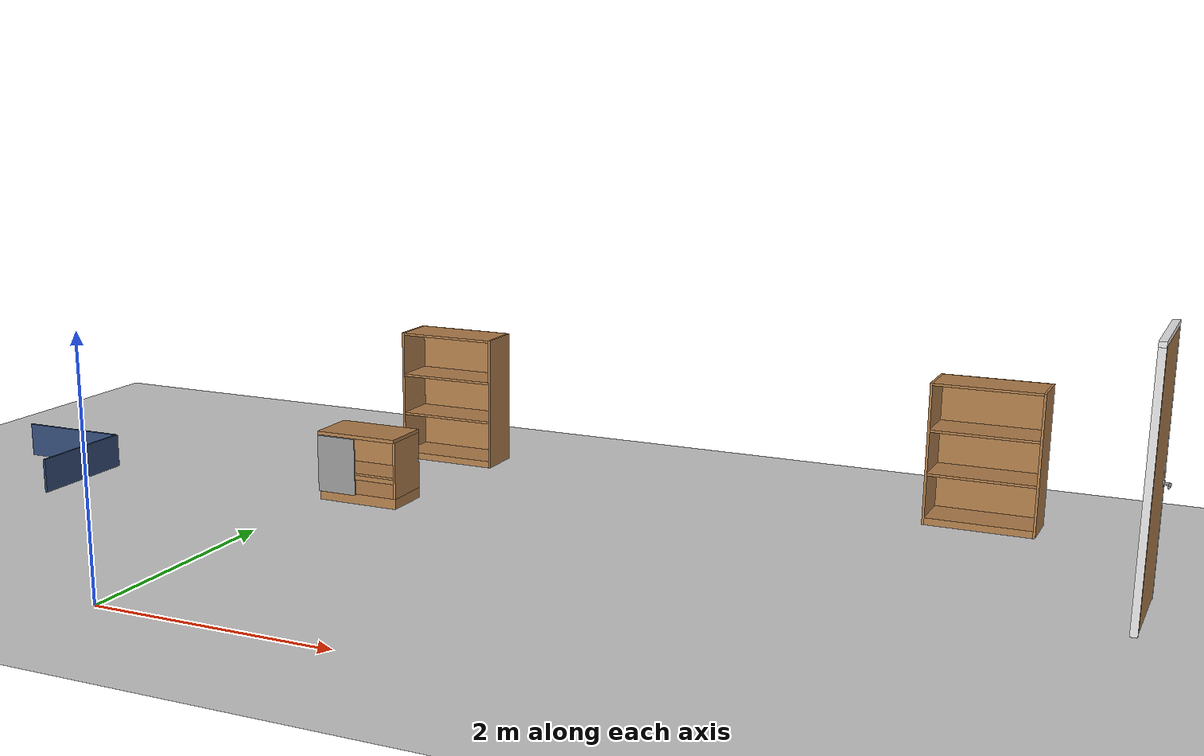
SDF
<sdf version="1.6">
 <world name="default">
  <model name="ground_plane">
   <static>1</static>
   <link name="link">
    <collision name="collision">
     <geometry><plane><normal>0 0 1</normal><size>100 100</size></plane></geometry>
     <surface><friction><ode><mu>100</mu><mu2>50</mu2></ode></friction></surface>
    </collision>
    <visual name="visual">
     <cast_shadows>0</cast_shadows>
     <geometry><plane><normal>0 0 1</normal><size>100 100</size></plane></geometry>
     <material>
      <script><uri>file://media/materials/scripts/gazebo.material</uri><name>Gazebo/Grey</name></script>
     </material>
    </visual>
   </link>
  </model>
  <model name="door_55_900_2090">
   <link name="link">
    <pose>0 0.45 0 0 -0 0</pose>
    <inertial>
     <mass>50</mass>
     <inertia><ixx>1</ixx><ixy>0</ixy><ixz>0</ixz><iyy>1</iyy><iyz>0</iyz><izz>1</izz></inertia>
    </inertial>
    <visual name="door">
     <pose>0 0 1.05 0 -0 0</pose>
     <geometry><box><size>0.055 0.83 2</size></box></geometry>
     <material>
      <script><uri>model://base_materials/wood/scripts/wood.material</uri><name>base_materials/wood</name></script>
     </material>
    </visual>
    <collision name="collision_door">
     <pose>0 0 1.05 0 -0 0</pose>
     <geometry><box><size>0.055 0.83 2</size></box></geometry>
    </collision>
    <visual name="right_frame">
     <pose>0 0.4325 1.025 0 -0 0</pose>
     <geometry><box><size>0.055 0.035 2.05</size></box></geometry>
     <material>
      <script><uri>model://base_materials/color/scripts</uri><name>hsr_color/white</name></script>
     </material>
    </visual>
    <collision name="collision_right_frame">
     <pose>0 0.4325 1.025 0 -0 0</pose>
     <geometry><box><size>0.055 0.035 2.05</size></box></geometry>
    </collision>
    <visual name="left_frame">
     <pose>0 -0.4325 1.025 0 -0 0</pose>
     <geometry><box><size>0.055 0.035 2.05</size></box></geometry>
     <material>
      <script><uri>model://base_materials/color/scripts</uri><name>hsr_color/white</name></script>
     </material>
    </visual>
    <collision name="collision_left_frame">
     <pose>0 -0.4325 1.025 0 -0 0</pose>
     <geometry><box><size>0.055 0.035 2.05</size></box></geometry>
    </collision>
    <visual name="top_frame">
     <pose>0 0 2.07 0 -0 0</pose>
     <geometry><box><size>0.055 0.9 0.04</size></box></geometry>
     <material>
      <script><uri>model://base_materials/color/scripts</uri><name>hsr_color/white</name></script>
     </material>
    </visual>
    <collision name="collision_top_frame">
     <pose>0 0 2.07 0 -0 0</pose>
     <geometry><box><size>0.055 0.9 0.04</size></box></geometry>
    </collision>
    <visual name="handle_front">
     <pose>0.0775 0.285 0.93 1.5708 -0 0</pose>
     <geometry><cylinder><radius>0.01</radius><length>0.1</length></cylinder></geometry>
     <material>
      <script><uri>model://base_materials/color/scripts</uri><name>hsr_color/grey</name></script>
     </material>
    </visual>
    <collision name="collision_handle_front">
     <pose>0.0775 0.285 0.93 1.5708 -0 0</pose>
     <geometry><cylinder><radius>0.01</radius><length>0.1</length></cylinder></geometry>
    </collision>
    <visual name="handle_back">
     <pose>-0.0775 0.285 0.93 1.5708 -0 0</pose>
     <geometry><cylinder><radius>0.01</radius><length>0.1</length></cylinder></geometry>
     <material>
      <script><uri>model://base_materials/color/scripts</uri><name>hsr_color/grey</name></script>
     </material>
    </visual>
    <collision name="collision_handle_back">
     <pose>-0.0775 0.285 0.93 1.5708 -0 0</pose>
     <geometry><cylinder><radius>0.01</radius><length>0.1</length></cylinder></geometry>
    </collision>
    <visual name="handle_center1">
     <pose>0 0.335 0.93 3.14159 1.57079 3.14159</pose>
     <geometry><cylinder><radius>0.01</radius><length>0.155</length></cylinder></geometry>
     <material>
      <script><uri>model://base_materials/color/scripts</uri><name>hsr_color/grey</name></script>
     </material>
    </visual>
    <collision name="collision_center1">
     <pose>0 0.335 0.93 3.14159 1.57079 3.14159</pose>
     <geometry><cylinder><radius>0.01</radius><length>0.155</length></cylinder></geometry>
    </collision>
    <visual name="handle_center2">
     <pose>0 0.335 0.93 3.14159 1.57079 3.14159</pose>
     <geometry><cylinder><radius>0.025</radius><length>0.075</length></cylinder></geometry>
     <material>
      <script><uri>model://base_materials/color/scripts</uri><name>hsr_color/grey</name></script>
     </material>
    </visual>
    <collision name="collision_center1">
     <pose>0 0.335 0.93 3.14159 1.57079 3.14159</pose>
     <geometry><cylinder><radius>0.025</radius><length>0.075</length></cylinder></geometry>
    </collision>
    <visual name="handle_front_right_corner">
     <pose>0.0775 0.335 0.93 0 -0 0</pose>
     <geometry><sphere><radius>0.01</radius></sphere></geometry>
     <material>
      <script><uri>model://base_materials/color/scripts</uri><name>hsr_color/grey</name></script>
     </material>
    </visual>
    <collision name="collision_handle_front_right_corner">
     <pose>0.0775 0.335 0.93 0 -0 0</pose>
     <geometry><sphere><radius>0.01</radius></sphere></geometry>
    </collision>
    <visual name="handle_front_left_corner">
     <pose>0.0775 0.235 0.93 0 -0 0</pose>
     <geometry><sphere><radius>0.01</radius></sphere></geometry>
     <material>
      <script><uri>model://base_materials/color/scripts</uri><name>hsr_color/grey</name></script>
     </material>
    </visual>
    <collision name="collision_handle_front_left_corner">
     <pose>0.0775 0.235 0.93 0 -0 0</pose>
     <geometry><sphere><radius>0.01</radius></sphere></geometry>
    </collision>
    <visual name="handle_back_right_corner">
     <pose>-0.0775 0.335 0.93 0 -0 0</pose>
     <geometry><sphere><radius>0.01</radius></sphere></geometry>
     <material>
      <script><uri>model://base_materials/color/scripts</uri><name>hsr_color/grey</name></script>
     </material>
    </visual>
    <collision name="collision_handle_back_right_corner">
     <pose>-0.0775 0.335 0.93 0 -0 0</pose>
     <geometry><sphere><radius>0.01</radius></sphere></geometry>
    </collision>
    <visual name="handle_back_left_corner">
     <pose>-0.0775 0.235 0.93 0 -0 0</pose>
     <geometry><sphere><radius>0.01</radius></sphere></geometry>
     <material>
      <script><uri>model://base_materials/color/scripts</uri><name>hsr_color/white</name></script>
     </material>
    </visual>
    <collision name="collision_handle_back_left_corner">
     <pose>-0.0775 0.235 0.93 0 -0 0</pose>
     <geometry><sphere><radius>0.01</radius></sphere></geometry>
    </collision>
    <visual name="handle_lock1">
     <pose>0 0.335 1.03 0 -0 0</pose>
     <geometry><box><size>0.075 0.005 0.04</size></box></geometry>
     <material>
      <script><uri>model://base_materials/color/scripts</uri><name>hsr_color/white</name></script>
     </material>
    </visual>
    <collision name="collision_handle_lock1">
     <pose>0 0.335 1.03 0 -0 0</pose>
     <geometry><box><size>0.075 0.005 0.04</size></box></geometry>
    </collision>
    <visual name="handle_lock2">
     <pose>0 0.335 1.03 3.14159 1.57079 3.14159</pose>
     <geometry><cylinder><radius>0.025</radius><length>0.065</length></cylinder></geometry>
     <material>
      <script><uri>model://base_materials/color/scripts</uri><name>hsr_color/white</name></script>
     </material>
    </visual>
    <collision name="collision_handle_lock1">
     <pose>0 0.335 1.03 3.14159 1.57079 3.14159</pose>
     <geometry><cylinder><radius>0.025</radius><length>0.065</length></cylinder></geometry>
    </collision>
    <velocity_decay><linear>0</linear><angular>0</angular></velocity_decay>
   </link>
   <static>1</static>
   <pose>6.79644 2.61344 -0.041685 0 -0 0</pose>
  </model>
  <model name="bookshelf">
   <static>1</static>
   <link name="link">
    <inertial><mass>1</mass></inertial>
    <collision name="back">
     <pose>0 0.005 0.6 0 -0 0</pose>
     <geometry><box><size>0.9 0.01 1.2</size></box></geometry>
    </collision>
    <visual name="visual1">
     <pose>0 0.005 0.6 0 -0 0</pose>
     <geometry><box><size>0.9 0.01 1.2</size></box></geometry>
     <material>
      <script><uri>file://media/materials/scripts/gazebo.material</uri><name>Gazebo/Wood</name></script>
     </material>
    </visual>
    <collision name="left_side">
     <pose>0.45 -0.195 0.6 0 -0 0</pose>
     <geometry><box><size>0.02 0.4 1.2</size></box></geometry>
    </collision>
    <visual name="visual2">
     <pose>0.45 -0.195 0.6 0 -0 0</pose>
     <geometry><box><size>0.02 0.4 1.2</size></box></geometry>
     <material>
      <script><uri>file://media/materials/scripts/gazebo.material</uri><name>Gazebo/Wood</name></script>
     </material>
    </visual>
    <collision name="right_side">
     <pose>-0.45 -0.195 0.6 0 -0 0</pose>
     <geometry><box><size>0.02 0.4 1.2</size></box></geometry>
    </collision>
    <visual name="visual3">
     <pose>-0.45 -0.195 0.6 0 -0 0</pose>
     <geometry><box><size>0.02 0.4 1.2</size></box></geometry>
     <material>
      <script><uri>file://media/materials/scripts/gazebo.material</uri><name>Gazebo/Wood</name></script>
     </material>
    </visual>
    <collision name="bottom">
     <pose>0 -0.195 0.03 0 -0 0</pose>
     <geometry><box><size>0.88 0.4 0.06</size></box></geometry>
    </collision>
    <visual name="visual4">
     <pose>0 -0.195 0.03 0 -0 0</pose>
     <geometry><box><size>0.88 0.4 0.06</size></box></geometry>
     <material>
      <script><uri>file://media/materials/scripts/gazebo.material</uri><name>Gazebo/Wood</name></script>
     </material>
    </visual>
    <collision name="top">
     <pose>0 -0.195 1.19 0 -0 0</pose>
     <geometry><box><size>0.88 0.4 0.02</size></box></geometry>
    </collision>
    <visual name="visual5">
     <pose>0 -0.195 1.19 0 -0 0</pose>
     <geometry><box><size>0.88 0.4 0.02</size></box></geometry>
     <material>
      <script><uri>file://media/materials/scripts/gazebo.material</uri><name>Gazebo/Wood</name></script>
     </material>
    </visual>
    <collision name="low_shelf">
     <pose>0 -0.195 0.43 0 -0 0</pose>
     <geometry><box><size>0.88 0.4 0.02</size></box></geometry>
    </collision>
    <visual name="visual6">
     <pose>0 -0.195 0.43 0 -0 0</pose>
     <geometry><box><size>0.88 0.4 0.02</size></box></geometry>
     <material>
      <script><uri>file://media/materials/scripts/gazebo.material</uri><name>Gazebo/Wood</name></script>
     </material>
    </visual>
    <collision name="high_shelf">
     <pose>0 -0.195 0.8 0 -0 0</pose>
     <geometry><box><size>0.88 0.4 0.02</size></box></geometry>
    </collision>
    <visual name="visual7">
     <pose>0 -0.195 0.8 0 -0 0</pose>
     <geometry><box><size>0.88 0.4 0.02</size></box></geometry>
     <material>
      <script><uri>file://media/materials/scripts/gazebo.material</uri><name>Gazebo/Wood</name></script>
     </material>
    </visual>
   </link>
   <pose>0.419292 4.96703 0 0 -0 0</pose>
  </model>
  <model name="bookshelf_clone">
   <static>1</static>
   <link name="link">
    <inertial><mass>1</mass></inertial>
    <collision name="back">
     <pose>0 0.005 0.6 0 -0 0</pose>
     <geometry><box><size>0.9 0.01 1.2</size></box></geometry>
    </collision>
    <visual name="visual1">
     <pose>0 0.005 0.6 0 -0 0</pose>
     <geometry><box><size>0.9 0.01 1.2</size></box></geometry>
     <material>
      <script><uri>file://media/materials/scripts/gazebo.material</uri><name>Gazebo/Wood</name></script>
     </material>
    </visual>
    <collision name="left_side">
     <pose>0.45 -0.195 0.6 0 -0 0</pose>
     <geometry><box><size>0.02 0.4 1.2</size></box></geometry>
    </collision>
    <visual name="visual2">
     <pose>0.45 -0.195 0.6 0 -0 0</pose>
     <geometry><box><size>0.02 0.4 1.2</size></box></geometry>
     <material>
      <script><uri>file://media/materials/scripts/gazebo.material</uri><name>Gazebo/Wood</name></script>
     </material>
    </visual>
    <collision name="right_side">
     <pose>-0.45 -0.195 0.6 0 -0 0</pose>
     <geometry><box><size>0.02 0.4 1.2</size></box></geometry>
    </collision>
    <visual name="visual3">
     <pose>-0.45 -0.195 0.6 0 -0 0</pose>
     <geometry><box><size>0.02 0.4 1.2</size></box></geometry>
     <material>
      <script><uri>file://media/materials/scripts/gazebo.material</uri><name>Gazebo/Wood</name></script>
     </material>
    </visual>
    <collision name="bottom">
     <pose>0 -0.195 0.03 0 -0 0</pose>
     <geometry><box><size>0.88 0.4 0.06</size></box></geometry>
    </collision>
    <visual name="visual4">
     <pose>0 -0.195 0.03 0 -0 0</pose>
     <geometry><box><size>0.88 0.4 0.06</size></box></geometry>
     <material>
      <script><uri>file://media/materials/scripts/gazebo.material</uri><name>Gazebo/Wood</name></script>
     </material>
    </visual>
    <collision name="top">
     <pose>0 -0.195 1.19 0 -0 0</pose>
     <geometry><box><size>0.88 0.4 0.02</size></box></geometry>
    </collision>
    <visual name="visual5">
     <pose>0 -0.195 1.19 0 -0 0</pose>
     <geometry><box><size>0.88 0.4 0.02</size></box></geometry>
     <material>
      <script><uri>file://media/materials/scripts/gazebo.material</uri><name>Gazebo/Wood</name></script>
     </material>
    </visual>
    <collision name="low_shelf">
     <pose>0 -0.195 0.43 0 -0 0</pose>
     <geometry><box><size>0.88 0.4 0.02</size></box></geometry>
    </collision>
    <visual name="visual6">
     <pose>0 -0.195 0.43 0 -0 0</pose>
     <geometry><box><size>0.88 0.4 0.02</size></box></geometry>
     <material>
      <script><uri>file://media/materials/scripts/gazebo.material</uri><name>Gazebo/Wood</name></script>
     </material>
    </visual>
    <collision name="high_shelf">
     <pose>0 -0.195 0.8 0 -0 0</pose>
     <geometry><box><size>0.88 0.4 0.02</size></box></geometry>
    </collision>
    <visual name="visual7">
     <pose>0 -0.195 0.8 0 -0 0</pose>
     <geometry><box><size>0.88 0.4 0.02</size></box></geometry>
     <material>
      <script><uri>file://media/materials/scripts/gazebo.material</uri><name>Gazebo/Wood</name></script>
     </material>
    </visual>
   </link>
   <pose>5.35168 4.95429 0 0 -0 0</pose>
  </model>
  <model name="low_wall">
   <link name="link">
    <inertial>
     <mass>50</mass>
     <inertia><ixx>1</ixx><ixy>0</ixy><ixz>0</ixz><iyy>1</iyy><iyz>0</iyz><izz>1</izz></inertia>
    </inertial>
    <visual name="wall">
     <pose>0 0 0.15 0 -0 0</pose>
     <geometry><box><size>0.02 1 0.3</size></box></geometry>
     <material>
      <ambient>0.392 0.584 0.929 1</ambient>
      <diffuse>0.196 0.292 0.4645 1</diffuse>
      <specular>0 0 0 1</specular>
     </material>
    </visual>
    <collision name="collision_wall">
     <pose>0 0 0.15 0 -0 0</pose>
     <geometry><box><size>0.02 1 0.3</size></box></geometry>
    </collision>
    <velocity_decay><linear>0</linear><angular>0</angular></velocity_decay>
   </link>
   <static>1</static>
   <pose>-2.29067 2.63547 0 0 -0 0</pose>
  </model>
  <model name="low_wall_0_clone">
   <link name="link">
    <inertial>
     <mass>50</mass>
     <inertia><ixx>1</ixx><ixy>0</ixy><ixz>0</ixz><iyy>1</iyy><iyz>0</iyz><izz>1</izz></inertia>
    </inertial>
    <visual name="wall">
     <pose>0 0 0.15 0 -0 0</pose>
     <geometry><box><size>0.02 1 0.3</size></box></geometry>
     <material>
      <ambient>0.392 0.584 0.929 1</ambient>
      <diffuse>0.196 0.292 0.4645 1</diffuse>
      <specular>0 0 0 1</specular>
     </material>
    </visual>
    <collision name="collision_wall">
     <pose>0 0 0.15 0 -0 0</pose>
     <geometry><box><size>0.02 1 0.3</size></box></geometry>
    </collision>
    <velocity_decay><linear>0</linear><angular>0</angular></velocity_decay>
   </link>
   <static>1</static>
   <pose>-2.78086 3.11946 0 0 0 -1.56043</pose>
  </model>
  <model name="living_sideboard_left_doors_revolute">
   <link name="link">
    <inertial>
     <mass>10</mass>
     <inertia><ixx>1</ixx><ixy>0</ixy><ixz>0</ixz><iyy>1</iyy><iyz>0</iyz><izz>1</izz></inertia>
    </inertial>
    <velocity_decay><linear>0</linear><angular>0</angular></velocity_decay>
    <visual name="bottom_board">
     <pose>-0.23 0.375 0.045 0 -0 0</pose>
     <geometry><box><size>0.42 0.75 0.09</size></box></geometry>
     <material>
      <script><uri>model://base_materials/wood/scripts/wood.material</uri><name>base_materials/wood</name></script>
      <shader type="pixel"><normal_map>__default__</normal_map></shader>
      <ambient>1 1 1 1</ambient>
      <diffuse>0.5 0.5 0.5 1</diffuse>
      <specular>0 0 0 1</specular>
      <emissive>0 0 0 1</emissive>
     </material>
    </visual>
    <visual name="back_board">
     <pose>-0.42 0.375 0.2925 0 -0 0</pose>
     <geometry><box><size>0.02 0.75 0.585</size></box></geometry>
     <material>
      <script><uri>model://base_materials/wood/scripts/wood.material</uri><name>base_materials/wood</name></script>
      <shader type="pixel"><normal_map>__default__</normal_map></shader>
      <ambient>1 1 1 1</ambient>
      <diffuse>0.5 0.5 0.5 1</diffuse>
      <specular>0 0 0 1</specular>
      <emissive>0 0 0 1</emissive>
     </material>
    </visual>
    <visual name="center_vertical_board1">
     <pose>-0.23 0.74 0.3375 0 -0 0</pose>
     <geometry><box><size>0.42 0.02 0.495</size></box></geometry>
     <material>
      <script><uri>model://base_materials/wood/scripts/wood.material</uri><name>base_materials/wood</name></script>
      <shader type="pixel"><normal_map>__default__</normal_map></shader>
      <ambient>1 1 1 1</ambient>
      <diffuse>0.5 0.5 0.5 1</diffuse>
      <specular>0 0 0 1</specular>
      <emissive>0 0 0 1</emissive>
     </material>
    </visual>
    <visual name="left_board">
     <pose>-0.23 0.01 0.3375 0 -0 0</pose>
     <geometry><box><size>0.42 0.02 0.495</size></box></geometry>
     <material>
      <script><uri>model://base_materials/wood/scripts/wood.material</uri><name>base_materials/wood</name></script>
      <shader type="pixel"><normal_map>__default__</normal_map></shader>
      <ambient>1 1 1 1</ambient>
      <diffuse>0.5 0.5 0.5 1</diffuse>
      <specular>0 0 0 1</specular>
      <emissive>0 0 0 1</emissive>
     </material>
    </visual>
    <visual name="top_board">
     <pose>-0.22 0.375 0.6 0 -0 0</pose>
     <geometry><box><size>0.44 0.75 0.03</size></box></geometry>
     <material>
      <script><uri>model://base_materials/wood/scripts/wood.material</uri><name>base_materials/wood</name></script>
      <shader type="pixel"><normal_map>__default__</normal_map></shader>
      <ambient>1 1 1 1</ambient>
      <diffuse>0.5 0.5 0.5 1</diffuse>
      <specular>0 0 0 1</specular>
      <emissive>0 0 0 1</emissive>
     </material>
    </visual>
    <visual name="1st_shelf">
     <pose>-0.225 0.37 0.259 0 -0 0</pose>
     <geometry><box><size>0.36 0.72 0.018</size></box></geometry>
     <material>
      <script><uri>model://base_materials/wood/scripts/wood.material</uri><name>base_materials/wood</name></script>
      <shader type="pixel"><normal_map>__default__</normal_map></shader>
      <ambient>1 1 1 1</ambient>
      <diffuse>0.5 0.5 0.5 1</diffuse>
      <specular>0 0 0 1</specular>
      <emissive>0 0 0 1</emissive>
     </material>
    </visual>
    <collision name="collision_center_vertical_board1">
     <pose>-0.23 0.74 0.3375 0 -0 0</pose>
     <geometry><box><size>0.42 0.02 0.495</size></box></geometry>
     <surface>
      <friction>
       <ode><mu>1</mu><mu2>1</mu2><fdir1>0 0 0</fdir1><slip1>0</slip1><slip2>0</slip2></ode>
       <torsional>
        <coefficient>1</coefficient>
        <patch_radius>0</patch_radius>
        <surface_radius>0</surface_radius>
        <use_patch_radius>1</use_patch_radius>
        <ode><slip>0</slip></ode>
       </torsional>
      </friction>
      <bounce><restitution_coefficient>0</restitution_coefficient><threshold>1e+06</threshold></bounce>
      <contact>
       <collide_without_contact>0</collide_without_contact>
       <collide_without_contact_bitmask>1</collide_without_contact_bitmask>
       <collide_bitmask>1</collide_bitmask>
       <ode>
        <soft_cfm>0</soft_cfm>
        <soft_erp>0.2</soft_erp>
        <kp>1e+13</kp>
        <kd>1</kd>
        <max_vel>0.01</max_vel>
        <min_depth>0</min_depth>
       </ode>
       <bullet>
        <split_impulse>1</split_impulse>
        <split_impulse_penetration_threshold>-0.01</split_impulse_penetration_threshold>
        <soft_cfm>0</soft_cfm>
        <soft_erp>0.2</soft_erp>
        <kp>1e+13</kp>
        <kd>1</kd>
       </bullet>
      </contact>
     </surface>
    </collision>
    <collision name="collision_bottom_board">
     <pose>-0.23 0.375 0.045 0 -0 0</pose>
     <geometry><box><size>0.42 0.75 0.09</size></box></geometry>
     <surface>
      <friction>
       <ode><mu>1</mu><mu2>1</mu2><fdir1>0 0 0</fdir1><slip1>0</slip1><slip2>0</slip2></ode>
       <torsional>
        <coefficient>1</coefficient>
        <patch_radius>0</patch_radius>
        <surface_radius>0</surface_radius>
        <use_patch_radius>1</use_patch_radius>
        <ode><slip>0</slip></ode>
       </torsional>
      </friction>
      <bounce><restitution_coefficient>0</restitution_coefficient><threshold>1e+06</threshold></bounce>
      <contact>
       <collide_without_contact>0</collide_without_contact>
       <collide_without_contact_bitmask>1</collide_without_contact_bitmask>
       <collide_bitmask>1</collide_bitmask>
       <ode>
        <soft_cfm>0</soft_cfm>
        <soft_erp>0.2</soft_erp>
        <kp>1e+13</kp>
        <kd>1</kd>
        <max_vel>0.01</max_vel>
        <min_depth>0</min_depth>
       </ode>
       <bullet>
        <split_impulse>1</split_impulse>
        <split_impulse_penetration_threshold>-0.01</split_impulse_penetration_threshold>
        <soft_cfm>0</soft_cfm>
        <soft_erp>0.2</soft_erp>
        <kp>1e+13</kp>
        <kd>1</kd>
       </bullet>
      </contact>
     </surface>
    </collision>
    <collision name="collision_top_board">
     <pose>-0.22 0.375 0.6 0 -0 0</pose>
     <geometry><box><size>0.44 0.75 0.03</size></box></geometry>
     <surface>
      <friction>
       <ode><mu>1</mu><mu2>1</mu2><fdir1>0 0 0</fdir1><slip1>0</slip1><slip2>0</slip2></ode>
       <torsional>
        <coefficient>1</coefficient>
        <patch_radius>0</patch_radius>
        <surface_radius>0</surface_radius>
        <use_patch_radius>1</use_patch_radius>
        <ode><slip>0</slip></ode>
       </torsional>
      </friction>
      <bounce><restitution_coefficient>0</restitution_coefficient><threshold>1e+06</threshold></bounce>
      <contact>
       <collide_without_contact>0</collide_without_contact>
       <collide_without_contact_bitmask>1</collide_without_contact_bitmask>
       <collide_bitmask>1</collide_bitmask>
       <ode>
        <soft_cfm>0</soft_cfm>
        <soft_erp>0.2</soft_erp>
        <kp>1e+13</kp>
        <kd>1</kd>
        <max_vel>0.01</max_vel>
        <min_depth>0</min_depth>
       </ode>
       <bullet>
        <split_impulse>1</split_impulse>
        <split_impulse_penetration_threshold>-0.01</split_impulse_penetration_threshold>
        <soft_cfm>0</soft_cfm>
        <soft_erp>0.2</soft_erp>
        <kp>1e+13</kp>
        <kd>1</kd>
       </bullet>
      </contact>
     </surface>
    </collision>
    <collision name="collision_left_board">
     <pose>-0.23 0.01 0.3375 0 -0 0</pose>
     <geometry><box><size>0.42 0.02 0.495</size></box></geometry>
     <surface>
      <friction>
       <ode><mu>1</mu><mu2>1</mu2><fdir1>0 0 0</fdir1><slip1>0</slip1><slip2>0</slip2></ode>
       <torsional>
        <coefficient>1</coefficient>
        <patch_radius>0</patch_radius>
        <surface_radius>0</surface_radius>
        <use_patch_radius>1</use_patch_radius>
        <ode><slip>0</slip></ode>
       </torsional>
      </friction>
      <bounce><restitution_coefficient>0</restitution_coefficient><threshold>1e+06</threshold></bounce>
      <contact>
       <collide_without_contact>0</collide_without_contact>
       <collide_without_contact_bitmask>1</collide_without_contact_bitmask>
       <collide_bitmask>1</collide_bitmask>
       <ode>
        <soft_cfm>0</soft_cfm>
        <soft_erp>0.2</soft_erp>
        <kp>1e+13</kp>
        <kd>1</kd>
        <max_vel>0.01</max_vel>
        <min_depth>0</min_depth>
       </ode>
       <bullet>
        <split_impulse>1</split_impulse>
        <split_impulse_penetration_threshold>-0.01</split_impulse_penetration_threshold>
        <soft_cfm>0</soft_cfm>
        <soft_erp>0.2</soft_erp>
        <kp>1e+13</kp>
        <kd>1</kd>
       </bullet>
      </contact>
     </surface>
    </collision>
    <collision name="collision_back_board">
     <pose>-0.42 0.375 0.2925 0 -0 0</pose>
     <geometry><box><size>0.02 0.75 0.585</size></box></geometry>
     <surface>
      <friction>
       <ode><mu>1</mu><mu2>1</mu2><fdir1>0 0 0</fdir1><slip1>0</slip1><slip2>0</slip2></ode>
       <torsional>
        <coefficient>1</coefficient>
        <patch_radius>0</patch_radius>
        <surface_radius>0</surface_radius>
        <use_patch_radius>1</use_patch_radius>
        <ode><slip>0</slip></ode>
       </torsional>
      </friction>
      <bounce><restitution_coefficient>0</restitution_coefficient><threshold>1e+06</threshold></bounce>
      <contact>
       <collide_without_contact>0</collide_without_contact>
       <collide_without_contact_bitmask>1</collide_without_contact_bitmask>
       <collide_bitmask>1</collide_bitmask>
       <ode>
        <soft_cfm>0</soft_cfm>
        <soft_erp>0.2</soft_erp>
        <kp>1e+13</kp>
        <kd>1</kd>
        <max_vel>0.01</max_vel>
        <min_depth>0</min_depth>
       </ode>
       <bullet>
        <split_impulse>1</split_impulse>
        <split_impulse_penetration_threshold>-0.01</split_impulse_penetration_threshold>
        <soft_cfm>0</soft_cfm>
        <soft_erp>0.2</soft_erp>
        <kp>1e+13</kp>
        <kd>1</kd>
       </bullet>
      </contact>
     </surface>
    </collision>
    <collision name="collision_1st_shelf">
     <pose>-0.225 0.37 0.259 0 -0 0</pose>
     <geometry><box><size>0.36 0.72 0.018</size></box></geometry>
     <surface>
      <friction>
       <ode><mu>1</mu><mu2>1</mu2><fdir1>0 0 0</fdir1><slip1>0</slip1><slip2>0</slip2></ode>
       <torsional>
        <coefficient>1</coefficient>
        <patch_radius>0</patch_radius>
        <surface_radius>0</surface_radius>
        <use_patch_radius>1</use_patch_radius>
        <ode><slip>0</slip></ode>
       </torsional>
      </friction>
      <bounce><restitution_coefficient>0</restitution_coefficient><threshold>1e+06</threshold></bounce>
      <contact>
       <collide_without_contact>0</collide_without_contact>
       <collide_without_contact_bitmask>1</collide_without_contact_bitmask>
       <collide_bitmask>1</collide_bitmask>
       <ode>
        <soft_cfm>0</soft_cfm>
        <soft_erp>0.2</soft_erp>
        <kp>1e+13</kp>
        <kd>1</kd>
        <max_vel>0.01</max_vel>
        <min_depth>0</min_depth>
       </ode>
       <bullet>
        <split_impulse>1</split_impulse>
        <split_impulse_penetration_threshold>-0.01</split_impulse_penetration_threshold>
        <soft_cfm>0</soft_cfm>
        <soft_erp>0.2</soft_erp>
        <kp>1e+13</kp>
        <kd>1</kd>
       </bullet>
      </contact>
     </surface>
    </collision>
   </link>
   <link name="link_0">
    <inertial>
     <mass>0.0022501</mass>
     <inertia>
      <ixx>4.63745e-05</ixx>
      <ixy>0</ixy>
      <ixz>0</ixz>
      <iyy>7.10894e-05</iyy>
      <iyz>0</iyz>
      <izz>2.47779e-05</izz>
     </inertia>
    </inertial>
    <pose>0.008693 0.187777 0.334354 0 -0 1.5708</pose>
    <visual name="visual">
     <geometry><box><size>0.363284 0.012965 0.497143</size></box></geometry>
     <material>
      <lighting>1</lighting>
      <script><uri>file://media/materials/scripts/gazebo.material</uri><name>Gazebo/Grey</name></script>
      <shader type="pixel"/>
      <emissive>0 0 0 1</emissive>
     </material>
    </visual>
    <collision name="collision">
     <geometry><box><size>0.363284 0.012965 0.497143</size></box></geometry>
     <surface>
      <friction>
       <ode><mu>1</mu><mu2>1</mu2><fdir1>0 0 0</fdir1><slip1>0</slip1><slip2>0</slip2></ode>
       <torsional>
        <coefficient>1</coefficient>
        <patch_radius>0</patch_radius>
        <surface_radius>0</surface_radius>
        <use_patch_radius>1</use_patch_radius>
        <ode><slip>0</slip></ode>
       </torsional>
      </friction>
      <bounce><restitution_coefficient>0</restitution_coefficient><threshold>1e+06</threshold></bounce>
      <contact>
       <collide_without_contact>0</collide_without_contact>
       <collide_without_contact_bitmask>1</collide_without_contact_bitmask>
       <collide_bitmask>1</collide_bitmask>
       <ode>
        <soft_cfm>0</soft_cfm>
        <soft_erp>0.2</soft_erp>
        <kp>1e+13</kp>
        <kd>1</kd>
        <max_vel>0.01</max_vel>
        <min_depth>0</min_depth>
       </ode>
       <bullet>
        <split_impulse>1</split_impulse>
        <split_impulse_penetration_threshold>-0.01</split_impulse_penetration_threshold>
        <soft_cfm>0</soft_cfm>
        <soft_erp>0.2</soft_erp>
        <kp>1e+13</kp>
        <kd>1</kd>
       </bullet>
      </contact>
     </surface>
    </collision>
   </link>
   <joint name="link_JOINT_0" type="revolute">
    <parent>link_0</parent>
    <child>link</child>
    <axis>
     <xyz>0 0 1</xyz>
     <use_parent_model_frame>0</use_parent_model_frame>
     <limit>
      <lower>-1.79769e+308</lower>
      <upper>1.79769e+308</upper>
      <effort>-1</effort>
      <velocity>-1</velocity>
     </limit>
     <dynamics>
      <spring_reference>0</spring_reference>
      <spring_stiffness>0</spring_stiffness>
      <damping>0</damping>
     </dynamics>
    </axis>
    <physics>
     <ode><limit><cfm>0</cfm><erp>0.2</erp></limit><suspension><cfm>0</cfm><erp>0.2</erp></suspension></ode>
    </physics>
   </joint>
   <static>1</static>
   <pose>0.00337 3.00151 0 0 0 -1.5708</pose>
  </model>
 </world>
</sdf>
